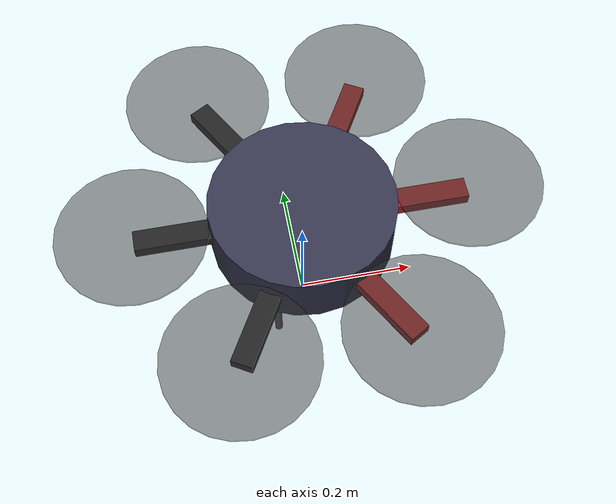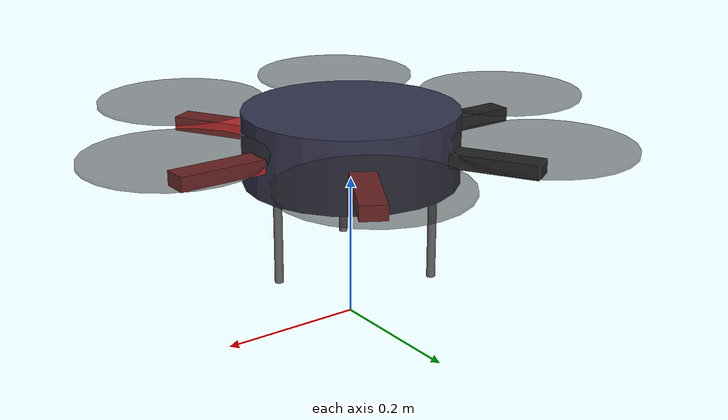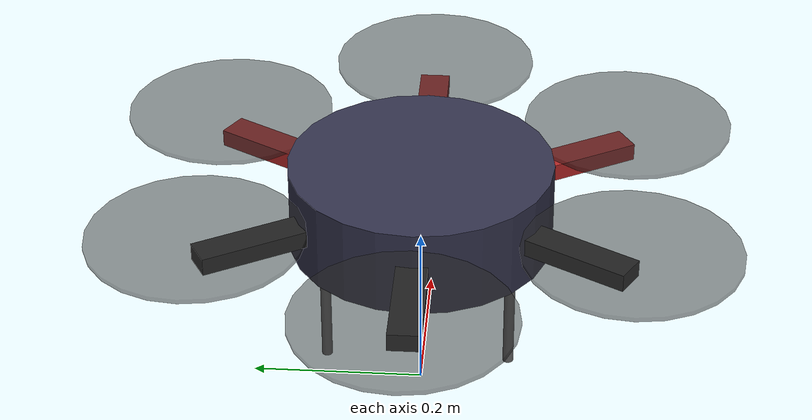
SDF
<?xml version="1.0"?>
<sdf version="1.9">
  <model name="nexus_hexacopter">
    <pose>0 0 0.25 0 0 0</pose>

    <!-- ── Base link (central body) ─────────────────────────────────── -->
    <link name="base_link">
      <inertial>
        <mass>2.5</mass>
        <inertia>
          <ixx>0.0625</ixx>
          <iyy>0.0625</iyy>
          <izz>0.1125</izz>
          <ixy>0</ixy><ixz>0</ixz><iyz>0</iyz>
        </inertia>
      </inertial>

      <!-- Central body (hexagonal approximation) -->
      <collision name="body_collision">
        <geometry>
          <cylinder><radius>0.15</radius><length>0.1</length></cylinder>
        </geometry>
      </collision>
      <visual name="body_visual">
        <geometry>
          <cylinder><radius>0.15</radius><length>0.1</length></cylinder>
        </geometry>
        <material>
          <ambient>0.15 0.15 0.2 1</ambient>
          <diffuse>0.2 0.2 0.3 1</diffuse>
          <specular>0.15 0.15 0.15 1</specular>
        </material>
      </visual>

      <!-- 6 Arms at 60-degree intervals -->
      <visual name="arm_0">
        <pose>0.16 0 0 0 0 0</pose>
        <geometry><box><size>0.22 0.035 0.02</size></box></geometry>
        <material><ambient>0.5 0.1 0.1 1</ambient><diffuse>0.7 0.15 0.15 1</diffuse></material>
      </visual>
      <visual name="arm_1">
        <pose>0.08 0.1386 0 0 0 1.0472</pose>
        <geometry><box><size>0.22 0.035 0.02</size></box></geometry>
        <material><ambient>0.5 0.1 0.1 1</ambient><diffuse>0.7 0.15 0.15 1</diffuse></material>
      </visual>
      <visual name="arm_2">
        <pose>-0.08 0.1386 0 0 0 2.0944</pose>
        <geometry><box><size>0.22 0.035 0.02</size></box></geometry>
        <material><ambient>0.1 0.1 0.1 1</ambient><diffuse>0.15 0.15 0.15 1</diffuse></material>
      </visual>
      <visual name="arm_3">
        <pose>-0.16 0 0 0 0 3.1416</pose>
        <geometry><box><size>0.22 0.035 0.02</size></box></geometry>
        <material><ambient>0.1 0.1 0.1 1</ambient><diffuse>0.15 0.15 0.15 1</diffuse></material>
      </visual>
      <visual name="arm_4">
        <pose>-0.08 -0.1386 0 0 0 -2.0944</pose>
        <geometry><box><size>0.22 0.035 0.02</size></box></geometry>
        <material><ambient>0.1 0.1 0.1 1</ambient><diffuse>0.15 0.15 0.15 1</diffuse></material>
      </visual>
      <visual name="arm_5">
        <pose>0.08 -0.1386 0 0 0 -1.0472</pose>
        <geometry><box><size>0.22 0.035 0.02</size></box></geometry>
        <material><ambient>0.5 0.1 0.1 1</ambient><diffuse>0.7 0.15 0.15 1</diffuse></material>
      </visual>

      <!-- Landing gear -->
      <visual name="leg_1">
        <pose>0.12 0 -0.1 0 0 0</pose>
        <geometry><cylinder><radius>0.006</radius><length>0.15</length></cylinder></geometry>
        <material><ambient>0.3 0.3 0.3 1</ambient><diffuse>0.4 0.4 0.4 1</diffuse></material>
      </visual>
      <visual name="leg_2">
        <pose>-0.06 0.104 -0.1 0 0 0</pose>
        <geometry><cylinder><radius>0.006</radius><length>0.15</length></cylinder></geometry>
        <material><ambient>0.3 0.3 0.3 1</ambient><diffuse>0.4 0.4 0.4 1</diffuse></material>
      </visual>
      <visual name="leg_3">
        <pose>-0.06 -0.104 -0.1 0 0 0</pose>
        <geometry><cylinder><radius>0.006</radius><length>0.15</length></cylinder></geometry>
        <material><ambient>0.3 0.3 0.3 1</ambient><diffuse>0.4 0.4 0.4 1</diffuse></material>
      </visual>

      <!-- ── IMU sensor ──────────────────────────────────────────────── -->
      <sensor name="imu_sensor" type="imu">
        <always_on>true</always_on>
        <update_rate>250</update_rate>
        <imu>
          <angular_velocity>
            <x><noise type="gaussian"><mean>0.0</mean><stddev>0.0002</stddev></noise></x>
            <y><noise type="gaussian"><mean>0.0</mean><stddev>0.0002</stddev></noise></y>
            <z><noise type="gaussian"><mean>0.0</mean><stddev>0.0002</stddev></noise></z>
          </angular_velocity>
          <linear_acceleration>
            <x><noise type="gaussian"><mean>0.0</mean><stddev>0.004</stddev></noise></x>
            <y><noise type="gaussian"><mean>0.0</mean><stddev>0.004</stddev></noise></y>
            <z><noise type="gaussian"><mean>0.0</mean><stddev>0.004</stddev></noise></z>
          </linear_acceleration>
        </imu>
        <topic>imu</topic>
      </sensor>

      <!-- ── GPS ─────────────────────────────────────────────────────── -->
      <sensor name="navsat_sensor" type="navsat">
        <always_on>true</always_on>
        <update_rate>10</update_rate>
        <navsat>
          <position_sensing>
            <horizontal><noise type="gaussian"><mean>0.0</mean><stddev>0.5</stddev></noise></horizontal>
            <vertical><noise type="gaussian"><mean>0.0</mean><stddev>1.0</stddev></noise></vertical>
          </position_sensing>
        </navsat>
        <topic>navsat</topic>
      </sensor>

      <!-- ── Barometer ───────────────────────────────────────────────── -->
      <sensor name="air_pressure_sensor" type="air_pressure">
        <always_on>true</always_on>
        <update_rate>50</update_rate>
        <air_pressure>
          <reference_altitude>0</reference_altitude>
          <pressure><noise type="gaussian"><mean>0.0</mean><stddev>5.0</stddev></noise></pressure>
        </air_pressure>
        <topic>air_pressure</topic>
      </sensor>

      <!-- ── Magnetometer ────────────────────────────────────────────── -->
      <sensor name="magnetometer_sensor" type="magnetometer">
        <always_on>true</always_on>
        <update_rate>50</update_rate>
        <magnetometer>
          <x><noise type="gaussian"><mean>0.0</mean><stddev>0.001</stddev></noise></x>
          <y><noise type="gaussian"><mean>0.0</mean><stddev>0.001</stddev></noise></y>
          <z><noise type="gaussian"><mean>0.0</mean><stddev>0.001</stddev></noise></z>
        </magnetometer>
        <topic>magnetometer</topic>
      </sensor>

      <!-- ── Front camera ────────────────────────────────────────────── -->
      <sensor name="camera_front" type="camera">
        <pose>0.15 0 0 0 0 0</pose>
        <always_on>true</always_on>
        <update_rate>30</update_rate>
        <camera>
          <horizontal_fov>1.5708</horizontal_fov>
          <image>
            <width>640</width>
            <height>480</height>
            <format>R8G8B8</format>
          </image>
          <clip><near>0.1</near><far>100</far></clip>
        </camera>
        <topic>camera</topic>
      </sensor>

      <!-- ── Downward depth camera ───────────────────────────────────── -->
      <sensor name="depth_camera_down" type="depth_camera">
        <pose>0 0 -0.06 0 1.5708 0</pose>
        <always_on>true</always_on>
        <update_rate>15</update_rate>
        <camera>
          <horizontal_fov>1.2217</horizontal_fov>
          <image>
            <width>320</width>
            <height>240</height>
            <format>R_FLOAT32</format>
          </image>
          <clip><near>0.2</near><far>20</far></clip>
        </camera>
        <topic>depth_camera</topic>
      </sensor>

      <!-- ── 360 LiDAR ───────────────────────────────────────────────── -->
      <sensor name="lidar_sensor" type="gpu_lidar">
        <pose>0 0 0.06 0 0 0</pose>
        <always_on>true</always_on>
        <update_rate>10</update_rate>
        <lidar>
          <scan>
            <horizontal>
              <samples>720</samples>
              <resolution>1</resolution>
              <min_angle>-3.14159</min_angle>
              <max_angle>3.14159</max_angle>
            </horizontal>
            <vertical>
              <samples>16</samples>
              <resolution>1</resolution>
              <min_angle>-0.2618</min_angle>
              <max_angle>0.2618</max_angle>
            </vertical>
          </scan>
          <range>
            <min>0.1</min>
            <max>50.0</max>
            <resolution>0.01</resolution>
          </range>
          <noise type="gaussian">
            <mean>0.0</mean>
            <stddev>0.02</stddev>
          </noise>
        </lidar>
        <topic>lidar</topic>
      </sensor>

    </link>

    <!-- ── 6 Rotor links ─────────────────────────────────────────────── -->
    <!-- Rotor 0 (front, CW) -->
    <link name="rotor_0">
      <pose>0.27 0 0.03 0 0 0</pose>
      <inertial>
        <mass>0.03</mass>
        <inertia>
          <ixx>0.00003</ixx><iyy>0.00003</iyy><izz>0.00006</izz>
          <ixy>0</ixy><ixz>0</ixz><iyz>0</iyz>
        </inertia>
      </inertial>
      <visual name="visual">
        <geometry><cylinder><radius>0.12</radius><length>0.005</length></cylinder></geometry>
        <material><ambient>0.1 0.1 0.1 0.5</ambient><diffuse>0.15 0.15 0.15 0.5</diffuse></material>
      </visual>
    </link>

    <!-- Rotor 1 (front-left, CCW) -->
    <link name="rotor_1">
      <pose>0.135 0.2338 0.03 0 0 0</pose>
      <inertial>
        <mass>0.03</mass>
        <inertia>
          <ixx>0.00003</ixx><iyy>0.00003</iyy><izz>0.00006</izz>
          <ixy>0</ixy><ixz>0</ixz><iyz>0</iyz>
        </inertia>
      </inertial>
      <visual name="visual">
        <geometry><cylinder><radius>0.12</radius><length>0.005</length></cylinder></geometry>
        <material><ambient>0.1 0.1 0.1 0.5</ambient><diffuse>0.15 0.15 0.15 0.5</diffuse></material>
      </visual>
    </link>

    <!-- Rotor 2 (rear-left, CW) -->
    <link name="rotor_2">
      <pose>-0.135 0.2338 0.03 0 0 0</pose>
      <inertial>
        <mass>0.03</mass>
        <inertia>
          <ixx>0.00003</ixx><iyy>0.00003</iyy><izz>0.00006</izz>
          <ixy>0</ixy><ixz>0</ixz><iyz>0</iyz>
        </inertia>
      </inertial>
      <visual name="visual">
        <geometry><cylinder><radius>0.12</radius><length>0.005</length></cylinder></geometry>
        <material><ambient>0.1 0.1 0.1 0.5</ambient><diffuse>0.15 0.15 0.15 0.5</diffuse></material>
      </visual>
    </link>

    <!-- Rotor 3 (rear, CCW) -->
    <link name="rotor_3">
      <pose>-0.27 0 0.03 0 0 0</pose>
      <inertial>
        <mass>0.03</mass>
        <inertia>
          <ixx>0.00003</ixx><iyy>0.00003</iyy><izz>0.00006</izz>
          <ixy>0</ixy><ixz>0</ixz><iyz>0</iyz>
        </inertia>
      </inertial>
      <visual name="visual">
        <geometry><cylinder><radius>0.12</radius><length>0.005</length></cylinder></geometry>
        <material><ambient>0.1 0.1 0.1 0.5</ambient><diffuse>0.15 0.15 0.15 0.5</diffuse></material>
      </visual>
    </link>

    <!-- Rotor 4 (rear-right, CW) -->
    <link name="rotor_4">
      <pose>-0.135 -0.2338 0.03 0 0 0</pose>
      <inertial>
        <mass>0.03</mass>
        <inertia>
          <ixx>0.00003</ixx><iyy>0.00003</iyy><izz>0.00006</izz>
          <ixy>0</ixy><ixz>0</ixz><iyz>0</iyz>
        </inertia>
      </inertial>
      <visual name="visual">
        <geometry><cylinder><radius>0.12</radius><length>0.005</length></cylinder></geometry>
        <material><ambient>0.1 0.1 0.1 0.5</ambient><diffuse>0.15 0.15 0.15 0.5</diffuse></material>
      </visual>
    </link>

    <!-- Rotor 5 (front-right, CCW) -->
    <link name="rotor_5">
      <pose>0.135 -0.2338 0.03 0 0 0</pose>
      <inertial>
        <mass>0.03</mass>
        <inertia>
          <ixx>0.00003</ixx><iyy>0.00003</iyy><izz>0.00006</izz>
          <ixy>0</ixy><ixz>0</ixz><iyz>0</iyz>
        </inertia>
      </inertial>
      <visual name="visual">
        <geometry><cylinder><radius>0.12</radius><length>0.005</length></cylinder></geometry>
        <material><ambient>0.1 0.1 0.1 0.5</ambient><diffuse>0.15 0.15 0.15 0.5</diffuse></material>
      </visual>
    </link>

    <!-- ── Rotor joints ──────────────────────────────────────────────── -->
    <joint name="rotor_0_joint" type="revolute">
      <parent>base_link</parent><child>rotor_0</child>
      <axis><xyz>0 0 1</xyz><limit><lower>-1e16</lower><upper>1e16</upper></limit></axis>
    </joint>
    <joint name="rotor_1_joint" type="revolute">
      <parent>base_link</parent><child>rotor_1</child>
      <axis><xyz>0 0 1</xyz><limit><lower>-1e16</lower><upper>1e16</upper></limit></axis>
    </joint>
    <joint name="rotor_2_joint" type="revolute">
      <parent>base_link</parent><child>rotor_2</child>
      <axis><xyz>0 0 1</xyz><limit><lower>-1e16</lower><upper>1e16</upper></limit></axis>
    </joint>
    <joint name="rotor_3_joint" type="revolute">
      <parent>base_link</parent><child>rotor_3</child>
      <axis><xyz>0 0 1</xyz><limit><lower>-1e16</lower><upper>1e16</upper></limit></axis>
    </joint>
    <joint name="rotor_4_joint" type="revolute">
      <parent>base_link</parent><child>rotor_4</child>
      <axis><xyz>0 0 1</xyz><limit><lower>-1e16</lower><upper>1e16</upper></limit></axis>
    </joint>
    <joint name="rotor_5_joint" type="revolute">
      <parent>base_link</parent><child>rotor_5</child>
      <axis><xyz>0 0 1</xyz><limit><lower>-1e16</lower><upper>1e16</upper></limit></axis>
    </joint>

  </model>
</sdf>
